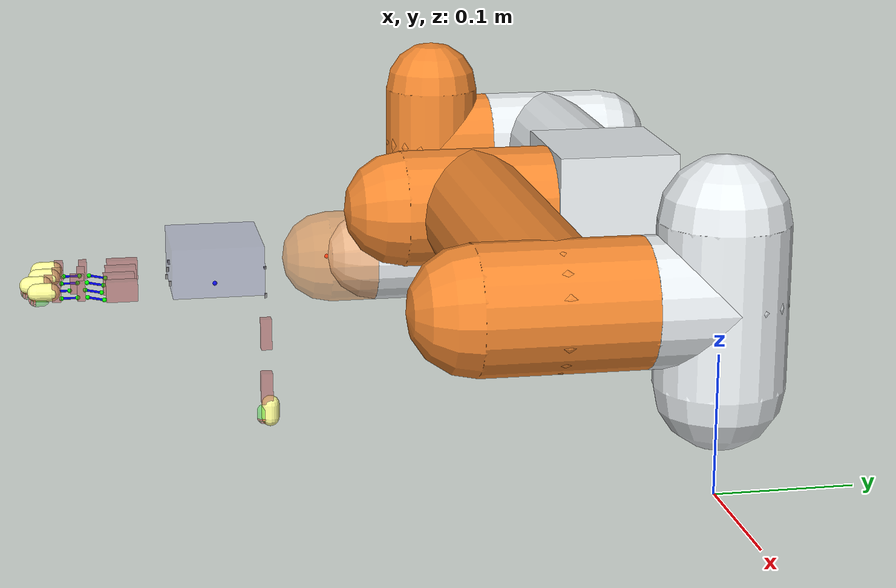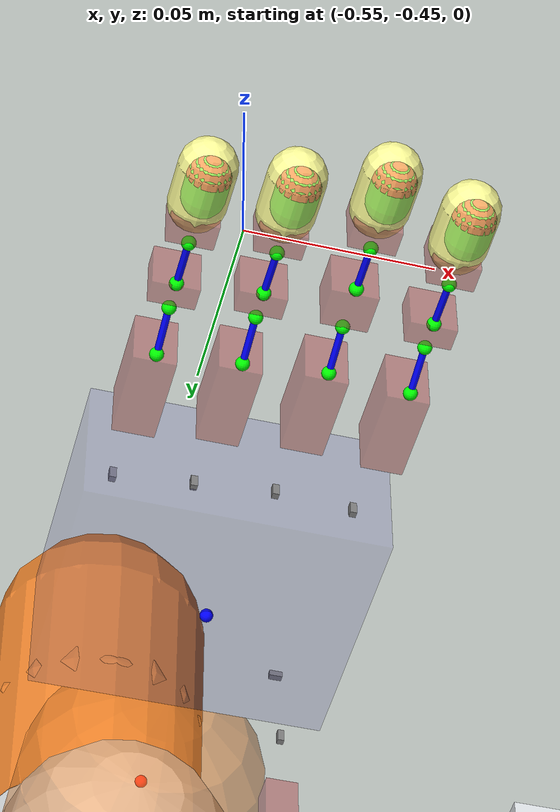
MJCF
<?xml version='1.0' encoding='utf-8'?>
<mujoco model="ParaHand_fr3">
    <compiler angle="radian" />
    <default>
        <geom condim='4' solref=".01 1" solimp=".99 .99 .001" contype="1" conaffinity="1"/>
        <default class="hand">
            <geom type="mesh" density="1250" friction="1 0.05 0.0002" rgba="0 0 1 0" />
        </default>
        <default class="visual">
            <geom contype="0" conaffinity="0" group="2" density="1" />
        </default>
        <default class="tip">
            <geom zaxis="1 0 0" type="capsule" size="0.008 0.006" pos="0.022 0 0" rgba="1 1 .6 1" density="1000" friction="1 0.2 0.01" />
        </default>
		<default class="tac">
            <geom zaxis="1 0 0" type="capsule" size="0.006 0.003" pos="0.026 0.006 0" rgba="0 1 0 0.3" density="1000" friction="1 0.2 0.01" />
        </default>
        <default class="collision">
            <geom density="1250" friction="1.0 0.1 0.001" rgba="0.7 0.3 0.3 0.5" />
            <default class="link_1_collision">
                <geom type="box" pos="0.019235 0.00017 0" size="0.013545 0.00875 0.00599"/>
            </default>
            <default class="link_2_collision">
                <geom type="box" pos="-0.0125 0 0" size="0.00341 0.0075 0.0065"/>
            </default>
            <default class="link_3_collision">
                <geom type="box" pos="0.01113 0 0" size="0.003805 0.0075 0.0065"/>
            </default>
        </default>
        <default class="palm_collision">
            <geom density="1500" friction="1.0 0.1 0.001" rgba="0.3 0.3 0.7 0.2" />
        </default>
        <default class="tendon">
            <tendon  width="0.001" rgba="0 0 1 1"/>
			<position ctrllimited="true" forcelimited="true" forcerange="-400 0" ctrlrange="0.0037 0.0285" kp="200"/>
        </default>
        <default class="tendon_site">
            <site size="0.002" rgba="0 1 0 1" />
        </default>
        <default class="thumb_joint">
            <joint type="hinge" range="0 1.57" limited="true" solreflimit=".001 1" solimplimit="0.97 0.99 0.00001 0.1 2" damping="1"/>
            <position ctrllimited="true" inheritrange="1" kp="10"/>
        </default>
        <default class="swing_joint">
            <joint type="hinge" solreflimit=".001 1" solimplimit="0.97 0.99 0.00001 0.1 2" damping="1" range="-0.26 0.26" />
            <position ctrllimited="true" inheritrange="1" kp="10"/>
        </default>
        <default class="finger_joint">
            <joint type="hinge" range="0 1.57" limited="true" solreflimit=".001 1" solimplimit="0.97 0.99 0.00001 0.1 2" damping="1"/>
            <position ctrllimited="true" inheritrange="1" kp="10"/>
        </default>
		<default class="passive_finger_joint">
            <joint type="hinge" range="0 1.57" limited="true" solreflimit=".001 1" solimplimit="0.97 0.99 0.00001 0.1 2" damping="0.001" stiffness="0.005"/>
        </default>
        <default class="touch_sensor">
            <site rgba="1 0 0 0.3" zaxis="1 0 0" size="0.006" pos="0.029 0.006 0"/>
        </default>
        <default class="fr3">
            <joint type="hinge" axis="0 0 1" armature="0.1" />
            <position ctrllimited="true" inheritrange="1" kp="2000" kv="200"/>
        </default>
    </default>
    <keyframe>
        <key name="home"
            qpos="0.0 -1.57 0.77 0.0 1.57 0.0
                0 0 0 0
                0 0 0 0
                0 0 0 0
                0 0 0 0
                0 0 0 0"
            qvel="0 0 0 0 0 0
                0 0 0 0
                0 0 0 0
                0 0 0 0
                0 0 0 0
                0 0 0 0"
            ctrl="0.0 -1.57 0.77 0.0 1.57 0.0
                0 0 0 0
                0 0 0.0285
                0 0 0.0285
                0 0 0.0285
                0 0 0.0285" />
    </keyframe>
    <worldbody>
        <camera name="default" pos="-0.988 -1.151 0.478" xyaxes="0.813 -0.582 0.000 0.116 0.162 0.980"/>
        <camera name="cam1" pos="-0.429 -1.169 0.358" xyaxes="0.984 -0.178 -0.000 0.028 0.154 0.988"/>
        <camera name="cam_close" pos="-0.139 -0.614 0.217" xyaxes="0.830 0.557 -0.000 -0.218 0.324 0.921"/>

        <body name="base_link" pos="0 0 0">
            <inertial pos="-0.00049027 -0.00045095 0.032527" mass="0.78393" fullinertia="0.0013854 0.0013849 0.001977 1.1455E-05 -1.0642E-05 -9.7435E-06" />

            <body name="shoulder_link">
                <joint class="fr3" name="j1" range="-3.0543 3.0543" />
                <inertial pos="-3.8658E-07 -0.0024176 0.13519" mass="2.1225" fullinertia="0.0033227 0.0032419 0.0023129 -5.0648E-08 -6.3401E-09 4.3768E-05" />
                <geom pos="0 0 0.13674" rgba="0.89804 0.91765 0.92941 1" type="capsule" size="0.045 0.05694" group="0" contype="16" conaffinity="4193344"/>
                <geom pos="0 -0.0269 0.14" zaxis="0 1 0" rgba="0.89804 0.91765 0.92941 1" type="capsule" size="0.045 0.0269" group="0" contype="16" conaffinity="4193344"/>

                <body name="upperarm_link" pos="0 0 0.14" zaxis="0 -1 0">
                    <joint class="fr3" name="j2" range="-4.6251 1.4835" />
                    <inertial pos="-0.14111 3.4656E-06 0.11053" mass="4.8053" fullinertia="0.0075945 0.0081317 0.0059231 3.7143E-07 -7.9228E-12 -1.2918E-11" />
                    <geom pos="0 0 0.11194" zaxis="0 0 1" rgba="0.94118 0.52941 0.18824 1" type="capsule" size="0.045 0.05794" group="0" contype="8" conaffinity="4194048"/>
                    <geom pos="-0.14 0 0.114" zaxis="1 0 0" rgba="0.94118 0.52941 0.18824 1" type="capsule" size="0.045 0.14" group="0" contype="8" conaffinity="4194048"/>
                    <geom pos="-0.28 0 0.11194" zaxis="0 0 1" rgba="0.94118 0.52941 0.18824 1" type="capsule" size="0.045 0.05794" group="0" contype="1" conaffinity="4193280"/>

                    <body name="forearm_link" pos="-0.28 0 0" euler="0 0 0">
                        <joint class="fr3" name="j3" range="-2.8274 2.8274" />
                        <inertial pos="-0.18987 5.2268E-06 0.0034145" mass="2.2312" fullinertia="0.0028852 0.0035145 0.0029186 7.3389E-07 -3.5373E-05 -2.8527E-07" />
                        <geom pos="-0.1499 0 0" zaxis="1 0 0" rgba="0.89804 0.91765 0.92941 1" type="capsule" size="0.04 0.0899" group="0" contype="128" conaffinity="4193312" />
                        <geom pos="-0.24 0 0.00182" zaxis="0 0 1" rgba="0.89804 0.91765 0.92941 1" type="capsule" size="0.04 0.05118" group="0" contype="2" conaffinity="3932672"/>
                        <geom pos="-0.007505 0 0.0069" zaxis="0 1 0" rgba="0.89804 0.91765 0.92941 1" type="box" size="0.0525 0.047 0.045" group="0" contype="64" conaffinity="3670032"/>

                        <body name="wrist1_link" pos="-0.24001 0 0" euler="0 0 0">
                            <joint class="fr3" name="j4" range="-4.6251 1.4835" />
                            <inertial pos="4.5665E-07 -0.0034666 0.098292" mass="1.5961" fullinertia="0.0020112 0.0014524 0.0019076 6.8085E-09 2.4945E-08 3.2511E-05" />
                            <geom pos="0 0 0.07785" zaxis="0 0 1" rgba="0.94118 0.52941 0.18824 1" type="capsule" size="0.04 0.0244" group="0" contype="256" conaffinity="2097192"/>
                            <geom pos="0 -0.00291 0.102" zaxis="0 1 0" rgba="0.94118 0.52941 0.18824 1" type="capsule" size="0.04 0.050275" group="0" contype="256" conaffinity="2097192"/>

                            <body name="wrist2_link" pos="0 0 0.102" euler="1.5708 0 0">
                                <joint class="fr3" name="j5" range="-3.0543 3.0543" />
                                <inertial pos="-4.5262E-07 0.0034666 0.098292" mass="1.5961" fullinertia="0.0020112 0.0014524 0.0019076 6.8086E-09 -2.4945E-08 -3.2511E-05" />
                                <geom pos="0 0 0.07785" zaxis="0 0 1" rgba="0.89804 0.91765 0.92941 1" type="capsule" size="0.04 0.0244" group="0" contype="512" conaffinity="2097198"/>
                                <geom pos="0 0.00291 0.102" zaxis="0 1 0" rgba="0.89804 0.91765 0.92941 1" type="capsule" size="0.04 0.050275" group="0" contype="512" conaffinity="2097198"/>

                                <body name="wrist3_link" pos="0 0 0.102" euler="-1.5708 0 0">
                                    <joint class="fr3" name="j6" range="-3.0543 3.0543" />
                                    <inertial pos="7.559E-05 1.3858E-05 0.076619" mass="0.53877" fullinertia="0.00028785 0.00028896 0.00042655 -2.0584E-09 -1.3892E-07 1.8115E-07" />
                                    <geom pos="0 0 0.0736" zaxis="0 0 1" rgba="0.94118 0.52941 0.18824 0.5" type="capsule" size="0.04 0.0204" group="0" />

                                    <body name="arm_tcp" pos="0 0 0" euler="0 0 0">
                                        <geom pos="0 0 0.094" rgba="1 0 0 1" type="sphere" size="0.001" class="visual" />

                                        <body name="palm" pos="0 0 0.094" euler="0 0 0" childclass="hand">
                                            <site name="test" size="0.002" rgba="1 0 0 1" />
                                            <site name="inner_palm_5" pos="-0.00249 -0.021 0.1" size="0.002" rgba="0 0 1 1" />
                                            <geom name="palm_collision_1" type="box" pos="-0.00249 0.00075 0.1" size="0.045 0.02175 0.04" class="palm_collision" contype="262144" conaffinity="2097343"/>
                                            <body name="thumb_mc_1" pos="0.01905 0 0.05851" euler="3.14 1.57 0">
                                                <joint name="thumb_cmc_1" type="hinge" axis="0 1 0" class="thumb_joint" range="0 0.785"/>
                                                <geom type="box" pos="0 0 0.01" size="0.001 0.001 0.002" class="visual" />
                                                <body name="thumb_mc_2" pos="0 0.01489 0.011500" euler="-1.57 0 0">
                                                    <joint name="thumb_cmc_2" type="hinge" axis="-1 0 0" class="thumb_joint" range="-1.57 0.785"/>
                                                    <geom type="box" pos="0 0 0.01" size="0.001 0.001 0.002" class="visual" />
                                                    <body name="thumb_pp" pos="0 0 0.022500" euler="-1.57 0 -1.57">
                                                        <joint name="thumb_mcp" type="hinge" axis="0 0 1" class="thumb_joint" range="-0.611 1.57"/>
                                                        <geom name="thumb_link_2_collision" type="box" pos="0.0225 0 0.00075" size="0.013795 0.00471 0.00485" class="collision" contype="524288" conaffinity="2343167"/>
                                                        <body name="thumb_dp" pos="0.04970 0 0" euler="0 0 -3.14">
                                                            <joint name="thumb_ip" type="hinge" axis="0 0 1" class="thumb_joint"/>
                                                            <geom name="thumb_link_3_collision" type="box" pos="-0.0227 0 0" size="0.014 0.005 0.006" class="collision" contype="1048576" conaffinity="2357503"/>
                                                            <geom name="thumb_tip" pos="-0.0442 0.003 0" class="tip" contype="1048576" conaffinity="2357503"/>
                                                            <site name="thumb_tip" pos="-0.0502 -0.003 0" class="touch_sensor"/>
                                                            <geom name="thumb_tac" pos="-0.0472 -0.003 0" class="tac" contype="1048576" conaffinity="2357503"/>
                                                        </body>
                                                    </body>
                                                </body>
                                            </body>
                                            <body name="index_mc" pos="0.03040 0 0.14156" euler="1.57 0 3.14">
                                                <joint name="index_mcp_1" axis="0 0 1." class="swing_joint" range="-0.52 0.0"/>
                                                <geom type="box" pos="0 0 0.01" size="0.001 0.001 0.002" class="visual" />
                                                <body name="index_pp" pos="0 -0.0225000 0.014000" euler="1.57 -1.57 0">
                                                    <joint name="index_mcp_2" axis="0 0 1" class="finger_joint" />
                                                    <site name="index_tendon_pip_1" pos="0.0345 0.008 0.0" class="tendon_site"/>
                                                    <geom name="index_link_1_collision" class="link_1_collision" contype="2048" conaffinity="3285181"/>
                                                    <body name="index_mp" pos="0.04166 -0.00102 0" euler="-3.14 0 -3.14">
                                                        <inertial pos="0 0 0" mass="0.005" fullinertia="1.89e-7 9.93e-7 9.81e-7 7.1e-8 0 0"/>
                                                        <joint name="index_pip" axis="0 0 -1" class="passive_finger_joint" />
                                                        <site name="index_tendon_pip_2" pos="-0.007 0.006 0.0" class="tendon_site"/>
                                                        <site name="index_tendon_dip_1" pos="-0.0155 0.006 0.0" class="tendon_site"/>
                                                        <geom name="index_link_2_collision" class="link_2_collision" contype="2048" conaffinity="3285181"/>
                                                        <body name="index_dp" pos="-0.0225 0 0" euler="-3.14 0 3.14">
                                                            <inertial pos="0 0 0" mass="0.005" fullinertia="1.93e-7 1.736e-6 1.707e-6 -1.9e-7 0 0"/>
                                                            <joint name="index_dip" axis="0 0 1" class="passive_finger_joint" />
                                                            <site name="index_tendon_dip_2" pos="0.007 0.006 0.0" class="tendon_site"/>
                                                            <geom name="index_link_3_collision" class="link_3_collision" contype="32768" conaffinity="3875005"/>
                                                            <geom name="index_tip" class="tip" contype="32768" conaffinity="3875005"/>
                                                            <site name="index_tip" class="touch_sensor" />
                                                            <geom name="index_tac" class="tac" contype="32768" conaffinity="3875005"/>
                                                        </body>
                                                    </body>
                                                </body>
                                            </body>
                                            <body name="middle_mc" pos="0.00710 0 0.14306" euler="1.57 0 3.14">
                                                <joint name="middle_mcp_1" axis="0 0 1" class="swing_joint"/>
                                                <geom type="box" pos="0 0 0.01" size="0.001 0.001 0.002" class="visual" />
                                                <body name="middle_pp" pos="0 -0.0225000 0.014000" euler="1.57 -1.57 0">
                                                    <joint name="middle_mcp_2" axis="0 0 1" class="finger_joint" />
                                                    <site name="middle_tendon_pip_1" pos="0.0345 0.008 0.0" class="tendon_site"/>
                                                    <geom name="middle_link_1_collision" class="link_1_collision" contype="8192" conaffinity="3250365"/>
                                                    <body name="middle_mp" pos="0.04166 -0.00102 0" euler="-3.14 0 -3.14">
                                                        <inertial pos="0 0 0" mass="0.005" fullinertia="1.89e-7 9.93e-7 9.81e-7 7.1e-8 0 0"/>
                                                        <joint name="middle_pip" axis="0 0 -1" class="passive_finger_joint"/>
                                                        <site name="middle_tendon_pip_2" pos="-0.007 0.006 0.0" class="tendon_site"/>
                                                        <site name="middle_tendon_dip_1" pos="-0.0205 0.006 0.0" class="tendon_site"/>
                                                        <geom name="middle_link_2_collision" class="link_2_collision" pos="-0.01388 0 0" size="0.00591 0.0075 0.0065" contype="2048" conaffinity="3285181"/>
                                                        <body name="middle_dp" pos="-0.0275 0 0" euler="-3.14 0 3.14">
                                                            <inertial pos="0 0 0" mass="0.005" fullinertia="1.93e-7 1.736e-6 1.707e-6 -1.9e-7 0 0"/>
                                                            <joint name="middle_dip" axis="0 0 1" class="passive_finger_joint" />
                                                            <site name="middle_tendon_dip_2" pos="0.007 0.006 0.0" class="tendon_site"/>
                                                            <geom name="middle_link_3_collision" class="link_3_collision" contype="131072" conaffinity="3791037"/>
                                                            <geom name="middle_tip" class="tip" contype="131072" conaffinity="3791037"/>
                                                            <site name="middle_tip" class="touch_sensor" />
                                                            <geom name="middle_tac" class="tac" contype="131072" conaffinity="3791037"/>
                                                        </body>
                                                    </body>
                                                </body>
                                            </body>
                                            <body name="ring_mc" pos="-0.0162 0 0.14056" euler="1.57 0 3.14">
                                                <joint name="ring_mcp_1" axis="0 0 1" class="swing_joint" />
                                                <geom type="box" pos="0 0 0.01" size="0.001 0.001 0.002" class="visual" />
                                                <body name="ring_pp" pos="0 -0.0225000 0.014000" euler="1.57 -1.57 0">
                                                    <joint name="ring_mcp_2" axis="0 0 1" class="finger_joint" />
                                                    <site name="ring_tendon_pip_1" pos="0.0345 0.008 0.0" class="tendon_site"/>
                                                    <geom name="ring_link_1_collision" class="link_1_collision" contype="4096" conaffinity="3302589"/>
                                                    <body name="ring_mp" pos="0.04166 -0.00102 0" euler="-3.14 0 -3.14">
                                                        <inertial pos="0 0 0" mass="0.005" fullinertia="1.89e-7 9.93e-7 9.81e-7 7.1e-8 0 0"/>
                                                        <joint name="ring_pip" axis="0 0 -1" class="passive_finger_joint" />
                                                        <site name="ring_tendon_pip_2" pos="-0.007 0.006 0.0" class="tendon_site"/>
                                                        <site name="ring_tendon_dip_1" pos="-0.0155 0.006 0.0" class="tendon_site"/>
                                                        <geom name="ring_link_2_collision" class="link_2_collision" contype="4096" conaffinity="3302589"/>
                                                        <body name="ring_dp" pos="-0.0225 0 0" euler="-3.14 0 3.14">
                                                            <inertial pos="0 0 0" mass="0.005" fullinertia="1.93e-7 1.736e-6 1.707e-6 -1.9e-7 0 0"/>
                                                            <joint name="ring_dip" axis="0 0 1" class="passive_finger_joint" />
                                                            <site name="ring_tendon_dip_2" pos="0.007 0.006 0.0" class="tendon_site"/>
                                                            <geom name="ring_link_3_collision" class="link_3_collision" contype="65536" conaffinity="3859645"/>
                                                            <geom name="ring_tip" class="tip" contype="65536" conaffinity="3859645"/>
                                                            <site name="ring_tip" class="touch_sensor" />
                                                            <geom name="ring_tac" class="tac" contype="65536" conaffinity="3859645"/>
                                                        </body>
                                                    </body>
                                                </body>
                                            </body>
                                            <body name="little_mc" pos="-0.0393 0 0.13806" euler="1.57 0 3.14">
                                                <joint name="little_mcp_1" axis="0 0 1" class="swing_joint" range="-0.0 0.52"/>
                                                <geom type="box" pos="0 0 0.01" size="0.001 0.001 0.002" class="visual" />
                                                <body name="little_pp" pos="0 -0.0225000 0.014000" euler="1.57 -1.57 0">
                                                    <joint name="little_mcp_2" axis="0 0 1" class="finger_joint" />
                                                    <site name="little_tendon_pip_1" pos="0.0345 0.008 0.0" class="tendon_site"/>
                                                    <geom name="little_link_1_collision" class="link_1_collision" contype="1024" conaffinity="2166973"/>
                                                    <body name="little_mp" pos="0.04166 -0.00102 0" euler="-3.14 0 -3.14">
                                                        <inertial pos="0 0 0" mass="0.005" fullinertia="1.89e-7 9.93e-7 9.81e-7 7.1e-8 0 0"/>
                                                        <joint name="little_pip" axis="0 0 -1" class="passive_finger_joint" />
                                                        <site name="little_tendon_pip_2" pos="-0.007 0.006 0.0" class="tendon_site"/>
                                                        <site name="little_tendon_dip_1" pos="-0.0155 0.006 0.0" class="tendon_site"/>
                                                        <geom name="little_link_2_collision" class="link_2_collision" contype="1024" conaffinity="2166973"/>
                                                        <body name="little_dp" pos="-0.0225 0 0" euler="-3.14 0 3.14">
                                                            <inertial pos="0 0 0" mass="0.005" fullinertia="1.93e-7 1.736e-6 1.707e-6 -1.9e-7 0 0"/>
                                                            <joint name="little_dip" axis="0 0 1" class="passive_finger_joint" />
                                                            <site name="little_tendon_dip_2" pos="0.007 0.006 0.0" class="tendon_site"/>
                                                            <geom name="little_link_3_collision" class="link_3_collision" contype="16384" conaffinity="3870909"/>
                                                            <geom name="little_tip" class="tip" contype="16384" conaffinity="3870909"/>
                                                            <site name="little_tip" class="touch_sensor" />
                                                            <geom name="little_tac" class="tac" contype="16384" conaffinity="3870909"/>
                                                        </body>
                                                    </body>
                                                </body>
                                            </body>
                                        </body>
                                    </body>
                                </body>
                            </body>
                        </body>
                    </body>
                </body>
            </body>
        </body>
    </worldbody>
    <contact>
        <!-- Prevent palm self-collision with the proximal finger links. -->
        <exclude body1="palm" body2="thumb_mc_2"/>
        <exclude body1="thumb_mc_2" body2="thumb_pp"/>
        <exclude body1="thumb_pp" body2="thumb_dp"/>
        <exclude body1="palm" body2="index_pp"/>
        <exclude body1="index_pp" body2="index_mp"/>
        <exclude body1="index_mp" body2="index_dp"/>
        <exclude body1="palm" body2="middle_pp"/>
        <exclude body1="middle_pp" body2="middle_mp"/>
        <exclude body1="middle_mp" body2="middle_dp"/>
        <exclude body1="palm" body2="ring_pp"/>
        <exclude body1="ring_pp" body2="ring_mp"/>
        <exclude body1="ring_mp" body2="ring_dp"/>
        <exclude body1="palm" body2="little_pp"/>
        <exclude body1="little_pp" body2="little_mp"/>
        <exclude body1="little_mp" body2="little_dp"/>
        <exclude body1="base_link" body2="shoulder_link"/>
        <exclude body1="base_link" body2="upperarm_link"/>
        <exclude body1="shoulder_link" body2="upperarm_link"/>
        <exclude body1="upperarm_link" body2="forearm_link"/>
        <exclude body1="forearm_link" body2="wrist1_link"/>
        <exclude body1="forearm_link" body2="wrist2_link"/>
        <exclude body1="wrist1_link" body2="wrist2_link"/>
        <exclude body1="wrist2_link" body2="wrist3_link"/>
        <exclude body1="wrist3_link" body2="wrist1_link"/>
        <exclude body1="wrist1_link" body2="palm"/>
        <exclude body1="wrist2_link" body2="palm"/>
        <exclude body1="wrist3_link" body2="palm"/>
    </contact>
    <tendon>
        <spatial name="index_tendon" width="0.001" rgba="0 0 1 1">
            <site site="index_tendon_pip_1"/>
            <site site="index_tendon_pip_2"/>
			<pulley divisor="1"/>
            <site site="index_tendon_dip_1"/>
            <site site="index_tendon_dip_2"/>
        </spatial>
        <spatial name="middle_tendon" width="0.001" rgba="0 0 1 1">
            <site site="middle_tendon_pip_1"/>
            <site site="middle_tendon_pip_2"/>

			<pulley divisor="1"/>
            <site site="middle_tendon_dip_1"/>
            <site site="middle_tendon_dip_2"/>
        </spatial>
        <spatial name="ring_tendon" width="0.001" rgba="0 0 1 1">
            <site site="ring_tendon_pip_1"/>
            <site site="ring_tendon_pip_2"/>
			<pulley divisor="1"/>
            <site site="ring_tendon_dip_1"/>
            <site site="ring_tendon_dip_2"/>
        </spatial>
        <spatial name="little_tendon" width="0.001" rgba="0 0 1 1">
            <site site="little_tendon_pip_1"/>
            <site site="little_tendon_pip_2"/>
			<pulley divisor="1"/>
            <site site="little_tendon_dip_1"/>
            <site site="little_tendon_dip_2"/>
        </spatial>
    </tendon>
    <actuator>
        <position class="fr3" name="j1" joint="j1"/>
        <position class="fr3" name="j2" joint="j2"/>
        <position class="fr3" name="j3" joint="j3"/>
        <position class="fr3" name="j4" joint="j4"/>
        <position class="fr3" name="j5" joint="j5"/>
        <position class="fr3" name="j6" joint="j6"/>

        <position class="thumb_joint" name="thumb_cmc_1" joint="thumb_cmc_1"/>
        <position class="thumb_joint" name="thumb_cmc_2" joint="thumb_cmc_2"/>
        <position class="thumb_joint" name="thumb_mcp" joint="thumb_mcp"/>
        <position class="thumb_joint" name="thumb_ip" joint="thumb_ip"/>

        <position class="swing_joint" name="index_mcp_1" joint="index_mcp_1"/>
        <position class="finger_joint" name="index_mcp_2" joint="index_mcp_2"/>
        <position name="index_tendon" tendon="index_tendon" class="tendon"/>

        <position class="swing_joint" name="middle_mcp_1" joint="middle_mcp_1"/>
        <position class="finger_joint" name="middle_mcp_2" joint="middle_mcp_2"/>
        <position name="middle_tendon" tendon="middle_tendon" class="tendon"/>

        <position class="swing_joint" name="ring_mcp_1" joint="ring_mcp_1"/>
        <position class="finger_joint" name="ring_mcp_2" joint="ring_mcp_2"/>
        <position name="ring_tendon" tendon="ring_tendon" class="tendon"/>

        <position class="swing_joint" name="little_mcp_1" joint="little_mcp_1"/>
        <position class="finger_joint" name="little_mcp_2" joint="little_mcp_2"/>
        <position name="little_tendon" tendon="little_tendon" class="tendon"/>
    </actuator>
</mujoco>
